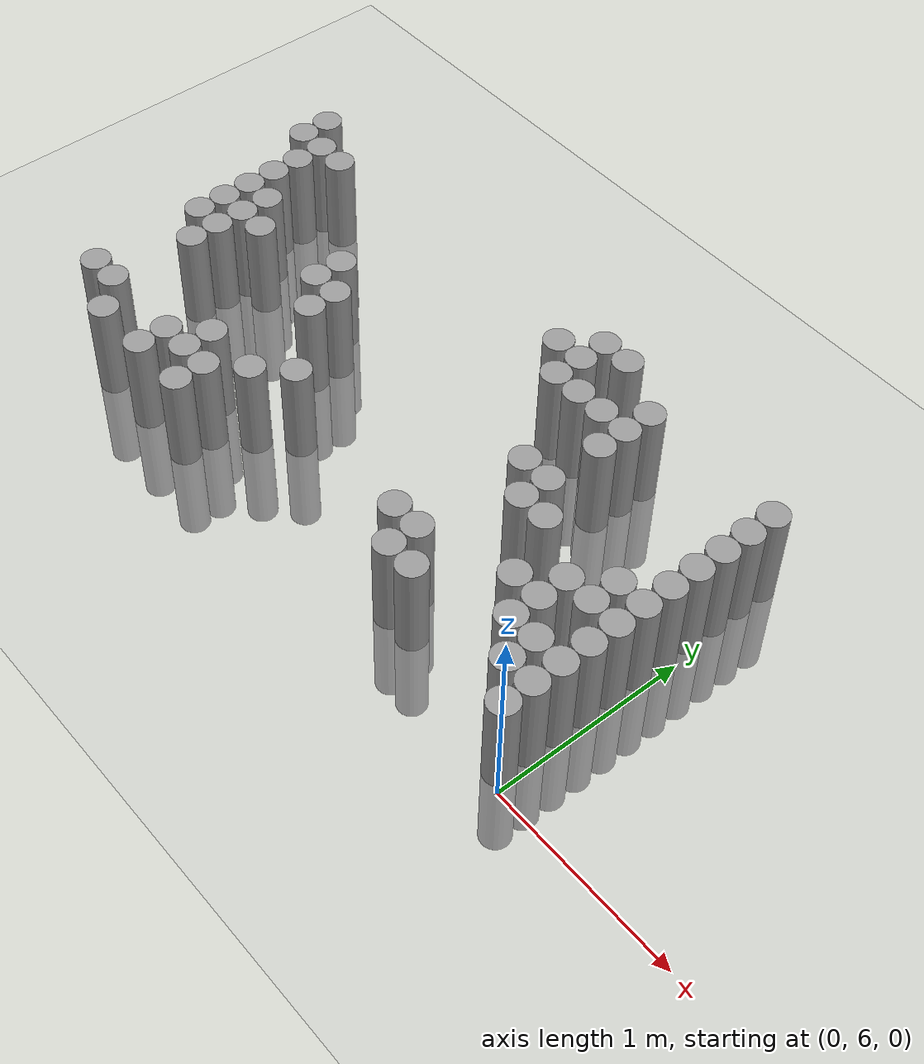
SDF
<sdf version="1.6">
 <world name="default">
  <model name="ground_plane">
   <static>1</static>
   <link name="link">
    <collision name="collision">
     <geometry><plane><normal>0 0 1</normal><size>100 100</size></plane></geometry>
     <surface><friction><ode><mu>100</mu><mu2>50</mu2></ode></friction></surface>
    </collision>
    <visual name="visual">
     <cast_shadows>0</cast_shadows>
     <geometry><plane><normal>0 0 1</normal><size>100 100</size></plane></geometry>
     <material>
      <script><uri>file://media/materials/scripts/gazebo.material</uri><name>Gazebo/Grey</name></script>
     </material>
    </visual>
   </link>
  </model>
  <model name="unit_cylinder_176">
   <pose>-3.375000 7.575000 0.000000 0.000000 0.000000 0.000000</pose>
   <link name="link">
    <inertial>
     <mass>1</mass>
     <inertia><ixx>0.145833</ixx><ixy>0</ixy><ixz>0</ixz><iyy>0.145833</iyy><iyz>0</iyz><izz>0.125</izz></inertia>
    </inertial>
    <collision name="collision">
     <geometry><cylinder><radius>0.075000</radius><length>1</length></cylinder></geometry>
    </collision>
    <visual name="visual">
     <geometry><cylinder><radius>0.075000</radius><length>1</length></cylinder></geometry>
     <material>
      <script><name>Gazebo/Grey</name><uri>file://media/materials/scripts/gazebo.material</uri></script>
     </material>
    </visual>
   </link>
  </model>
  <model name="unit_cylinder_177">
   <pose>-3.375000 7.725000 0.000000 0.000000 0.000000 0.000000</pose>
   <link name="link">
    <inertial>
     <mass>1</mass>
     <inertia><ixx>0.145833</ixx><ixy>0</ixy><ixz>0</ixz><iyy>0.145833</iyy><iyz>0</iyz><izz>0.125</izz></inertia>
    </inertial>
    <collision name="collision">
     <geometry><cylinder><radius>0.075000</radius><length>1</length></cylinder></geometry>
    </collision>
    <visual name="visual">
     <geometry><cylinder><radius>0.075000</radius><length>1</length></cylinder></geometry>
     <material>
      <script><name>Gazebo/Grey</name><uri>file://media/materials/scripts/gazebo.material</uri></script>
     </material>
    </visual>
   </link>
  </model>
  <model name="unit_cylinder_182">
   <pose>-3.225000 6.225000 0.000000 0.000000 0.000000 0.000000</pose>
   <link name="link">
    <inertial>
     <mass>1</mass>
     <inertia><ixx>0.145833</ixx><ixy>0</ixy><ixz>0</ixz><iyy>0.145833</iyy><iyz>0</iyz><izz>0.125</izz></inertia>
    </inertial>
    <collision name="collision">
     <geometry><cylinder><radius>0.075000</radius><length>1</length></cylinder></geometry>
    </collision>
    <visual name="visual">
     <geometry><cylinder><radius>0.075000</radius><length>1</length></cylinder></geometry>
     <material>
      <script><name>Gazebo/Grey</name><uri>file://media/materials/scripts/gazebo.material</uri></script>
     </material>
    </visual>
   </link>
  </model>
  <model name="unit_cylinder_183">
   <pose>-3.225000 6.825000 0.000000 0.000000 0.000000 0.000000</pose>
   <link name="link">
    <inertial>
     <mass>1</mass>
     <inertia><ixx>0.145833</ixx><ixy>0</ixy><ixz>0</ixz><iyy>0.145833</iyy><iyz>0</iyz><izz>0.125</izz></inertia>
    </inertial>
    <collision name="collision">
     <geometry><cylinder><radius>0.075000</radius><length>1</length></cylinder></geometry>
    </collision>
    <visual name="visual">
     <geometry><cylinder><radius>0.075000</radius><length>1</length></cylinder></geometry>
     <material>
      <script><name>Gazebo/Grey</name><uri>file://media/materials/scripts/gazebo.material</uri></script>
     </material>
    </visual>
   </link>
  </model>
  <model name="unit_cylinder_184">
   <pose>-3.225000 6.975000 0.000000 0.000000 0.000000 0.000000</pose>
   <link name="link">
    <inertial>
     <mass>1</mass>
     <inertia><ixx>0.145833</ixx><ixy>0</ixy><ixz>0</ixz><iyy>0.145833</iyy><iyz>0</iyz><izz>0.125</izz></inertia>
    </inertial>
    <collision name="collision">
     <geometry><cylinder><radius>0.075000</radius><length>1</length></cylinder></geometry>
    </collision>
    <visual name="visual">
     <geometry><cylinder><radius>0.075000</radius><length>1</length></cylinder></geometry>
     <material>
      <script><name>Gazebo/Grey</name><uri>file://media/materials/scripts/gazebo.material</uri></script>
     </material>
    </visual>
   </link>
  </model>
  <model name="unit_cylinder_185">
   <pose>-3.225000 7.125000 0.000000 0.000000 0.000000 0.000000</pose>
   <link name="link">
    <inertial>
     <mass>1</mass>
     <inertia><ixx>0.145833</ixx><ixy>0</ixy><ixz>0</ixz><iyy>0.145833</iyy><iyz>0</iyz><izz>0.125</izz></inertia>
    </inertial>
    <collision name="collision">
     <geometry><cylinder><radius>0.075000</radius><length>1</length></cylinder></geometry>
    </collision>
    <visual name="visual">
     <geometry><cylinder><radius>0.075000</radius><length>1</length></cylinder></geometry>
     <material>
      <script><name>Gazebo/Grey</name><uri>file://media/materials/scripts/gazebo.material</uri></script>
     </material>
    </visual>
   </link>
  </model>
  <model name="unit_cylinder_186">
   <pose>-3.225000 7.275000 0.000000 0.000000 0.000000 0.000000</pose>
   <link name="link">
    <inertial>
     <mass>1</mass>
     <inertia><ixx>0.145833</ixx><ixy>0</ixy><ixz>0</ixz><iyy>0.145833</iyy><iyz>0</iyz><izz>0.125</izz></inertia>
    </inertial>
    <collision name="collision">
     <geometry><cylinder><radius>0.075000</radius><length>1</length></cylinder></geometry>
    </collision>
    <visual name="visual">
     <geometry><cylinder><radius>0.075000</radius><length>1</length></cylinder></geometry>
     <material>
      <script><name>Gazebo/Grey</name><uri>file://media/materials/scripts/gazebo.material</uri></script>
     </material>
    </visual>
   </link>
  </model>
  <model name="unit_cylinder_187">
   <pose>-3.225000 7.425000 0.000000 0.000000 0.000000 0.000000</pose>
   <link name="link">
    <inertial>
     <mass>1</mass>
     <inertia><ixx>0.145833</ixx><ixy>0</ixy><ixz>0</ixz><iyy>0.145833</iyy><iyz>0</iyz><izz>0.125</izz></inertia>
    </inertial>
    <collision name="collision">
     <geometry><cylinder><radius>0.075000</radius><length>1</length></cylinder></geometry>
    </collision>
    <visual name="visual">
     <geometry><cylinder><radius>0.075000</radius><length>1</length></cylinder></geometry>
     <material>
      <script><name>Gazebo/Grey</name><uri>file://media/materials/scripts/gazebo.material</uri></script>
     </material>
    </visual>
   </link>
  </model>
  <model name="unit_cylinder_188">
   <pose>-3.225000 7.575000 0.000000 0.000000 0.000000 0.000000</pose>
   <link name="link">
    <inertial>
     <mass>1</mass>
     <inertia><ixx>0.145833</ixx><ixy>0</ixy><ixz>0</ixz><iyy>0.145833</iyy><iyz>0</iyz><izz>0.125</izz></inertia>
    </inertial>
    <collision name="collision">
     <geometry><cylinder><radius>0.075000</radius><length>1</length></cylinder></geometry>
    </collision>
    <visual name="visual">
     <geometry><cylinder><radius>0.075000</radius><length>1</length></cylinder></geometry>
     <material>
      <script><name>Gazebo/Grey</name><uri>file://media/materials/scripts/gazebo.material</uri></script>
     </material>
    </visual>
   </link>
  </model>
  <model name="unit_cylinder_191">
   <pose>-3.075000 6.225000 0.000000 0.000000 0.000000 0.000000</pose>
   <link name="link">
    <inertial>
     <mass>1</mass>
     <inertia><ixx>0.145833</ixx><ixy>0</ixy><ixz>0</ixz><iyy>0.145833</iyy><iyz>0</iyz><izz>0.125</izz></inertia>
    </inertial>
    <collision name="collision">
     <geometry><cylinder><radius>0.075000</radius><length>1</length></cylinder></geometry>
    </collision>
    <visual name="visual">
     <geometry><cylinder><radius>0.075000</radius><length>1</length></cylinder></geometry>
     <material>
      <script><name>Gazebo/Grey</name><uri>file://media/materials/scripts/gazebo.material</uri></script>
     </material>
    </visual>
   </link>
  </model>
  <model name="unit_cylinder_192">
   <pose>-3.075000 6.675000 0.000000 0.000000 0.000000 0.000000</pose>
   <link name="link">
    <inertial>
     <mass>1</mass>
     <inertia><ixx>0.145833</ixx><ixy>0</ixy><ixz>0</ixz><iyy>0.145833</iyy><iyz>0</iyz><izz>0.125</izz></inertia>
    </inertial>
    <collision name="collision">
     <geometry><cylinder><radius>0.075000</radius><length>1</length></cylinder></geometry>
    </collision>
    <visual name="visual">
     <geometry><cylinder><radius>0.075000</radius><length>1</length></cylinder></geometry>
     <material>
      <script><name>Gazebo/Grey</name><uri>file://media/materials/scripts/gazebo.material</uri></script>
     </material>
    </visual>
   </link>
  </model>
  <model name="unit_cylinder_193">
   <pose>-3.075000 6.825000 0.000000 0.000000 0.000000 0.000000</pose>
   <link name="link">
    <inertial>
     <mass>1</mass>
     <inertia><ixx>0.145833</ixx><ixy>0</ixy><ixz>0</ixz><iyy>0.145833</iyy><iyz>0</iyz><izz>0.125</izz></inertia>
    </inertial>
    <collision name="collision">
     <geometry><cylinder><radius>0.075000</radius><length>1</length></cylinder></geometry>
    </collision>
    <visual name="visual">
     <geometry><cylinder><radius>0.075000</radius><length>1</length></cylinder></geometry>
     <material>
      <script><name>Gazebo/Grey</name><uri>file://media/materials/scripts/gazebo.material</uri></script>
     </material>
    </visual>
   </link>
  </model>
  <model name="unit_cylinder_194">
   <pose>-3.075000 6.975000 0.000000 0.000000 0.000000 0.000000</pose>
   <link name="link">
    <inertial>
     <mass>1</mass>
     <inertia><ixx>0.145833</ixx><ixy>0</ixy><ixz>0</ixz><iyy>0.145833</iyy><iyz>0</iyz><izz>0.125</izz></inertia>
    </inertial>
    <collision name="collision">
     <geometry><cylinder><radius>0.075000</radius><length>1</length></cylinder></geometry>
    </collision>
    <visual name="visual">
     <geometry><cylinder><radius>0.075000</radius><length>1</length></cylinder></geometry>
     <material>
      <script><name>Gazebo/Grey</name><uri>file://media/materials/scripts/gazebo.material</uri></script>
     </material>
    </visual>
   </link>
  </model>
  <model name="unit_cylinder_195">
   <pose>-3.075000 7.125000 0.000000 0.000000 0.000000 0.000000</pose>
   <link name="link">
    <inertial>
     <mass>1</mass>
     <inertia><ixx>0.145833</ixx><ixy>0</ixy><ixz>0</ixz><iyy>0.145833</iyy><iyz>0</iyz><izz>0.125</izz></inertia>
    </inertial>
    <collision name="collision">
     <geometry><cylinder><radius>0.075000</radius><length>1</length></cylinder></geometry>
    </collision>
    <visual name="visual">
     <geometry><cylinder><radius>0.075000</radius><length>1</length></cylinder></geometry>
     <material>
      <script><name>Gazebo/Grey</name><uri>file://media/materials/scripts/gazebo.material</uri></script>
     </material>
    </visual>
   </link>
  </model>
  <model name="unit_cylinder_196">
   <pose>-3.075000 7.575000 0.000000 0.000000 0.000000 0.000000</pose>
   <link name="link">
    <inertial>
     <mass>1</mass>
     <inertia><ixx>0.145833</ixx><ixy>0</ixy><ixz>0</ixz><iyy>0.145833</iyy><iyz>0</iyz><izz>0.125</izz></inertia>
    </inertial>
    <collision name="collision">
     <geometry><cylinder><radius>0.075000</radius><length>1</length></cylinder></geometry>
    </collision>
    <visual name="visual">
     <geometry><cylinder><radius>0.075000</radius><length>1</length></cylinder></geometry>
     <material>
      <script><name>Gazebo/Grey</name><uri>file://media/materials/scripts/gazebo.material</uri></script>
     </material>
    </visual>
   </link>
  </model>
  <model name="unit_cylinder_197">
   <pose>-2.925000 6.075000 0.000000 0.000000 0.000000 0.000000</pose>
   <link name="link">
    <inertial>
     <mass>1</mass>
     <inertia><ixx>0.145833</ixx><ixy>0</ixy><ixz>0</ixz><iyy>0.145833</iyy><iyz>0</iyz><izz>0.125</izz></inertia>
    </inertial>
    <collision name="collision">
     <geometry><cylinder><radius>0.075000</radius><length>1</length></cylinder></geometry>
    </collision>
    <visual name="visual">
     <geometry><cylinder><radius>0.075000</radius><length>1</length></cylinder></geometry>
     <material>
      <script><name>Gazebo/Grey</name><uri>file://media/materials/scripts/gazebo.material</uri></script>
     </material>
    </visual>
   </link>
  </model>
  <model name="unit_cylinder_198">
   <pose>-2.925000 6.975000 0.000000 0.000000 0.000000 0.000000</pose>
   <link name="link">
    <inertial>
     <mass>1</mass>
     <inertia><ixx>0.145833</ixx><ixy>0</ixy><ixz>0</ixz><iyy>0.145833</iyy><iyz>0</iyz><izz>0.125</izz></inertia>
    </inertial>
    <collision name="collision">
     <geometry><cylinder><radius>0.075000</radius><length>1</length></cylinder></geometry>
    </collision>
    <visual name="visual">
     <geometry><cylinder><radius>0.075000</radius><length>1</length></cylinder></geometry>
     <material>
      <script><name>Gazebo/Grey</name><uri>file://media/materials/scripts/gazebo.material</uri></script>
     </material>
    </visual>
   </link>
  </model>
  <model name="unit_cylinder_200">
   <pose>-2.625000 6.075000 0.000000 0.000000 0.000000 0.000000</pose>
   <link name="link">
    <inertial>
     <mass>1</mass>
     <inertia><ixx>0.145833</ixx><ixy>0</ixy><ixz>0</ixz><iyy>0.145833</iyy><iyz>0</iyz><izz>0.125</izz></inertia>
    </inertial>
    <collision name="collision">
     <geometry><cylinder><radius>0.075000</radius><length>1</length></cylinder></geometry>
    </collision>
    <visual name="visual">
     <geometry><cylinder><radius>0.075000</radius><length>1</length></cylinder></geometry>
     <material>
      <script><name>Gazebo/Grey</name><uri>file://media/materials/scripts/gazebo.material</uri></script>
     </material>
    </visual>
   </link>
  </model>
  <model name="unit_cylinder_201">
   <pose>-2.625000 6.225000 0.000000 0.000000 0.000000 0.000000</pose>
   <link name="link">
    <inertial>
     <mass>1</mass>
     <inertia><ixx>0.145833</ixx><ixy>0</ixy><ixz>0</ixz><iyy>0.145833</iyy><iyz>0</iyz><izz>0.125</izz></inertia>
    </inertial>
    <collision name="collision">
     <geometry><cylinder><radius>0.075000</radius><length>1</length></cylinder></geometry>
    </collision>
    <visual name="visual">
     <geometry><cylinder><radius>0.075000</radius><length>1</length></cylinder></geometry>
     <material>
      <script><name>Gazebo/Grey</name><uri>file://media/materials/scripts/gazebo.material</uri></script>
     </material>
    </visual>
   </link>
  </model>
  <model name="unit_cylinder_203">
   <pose>-2.475000 6.225000 0.000000 0.000000 0.000000 0.000000</pose>
   <link name="link">
    <inertial>
     <mass>1</mass>
     <inertia><ixx>0.145833</ixx><ixy>0</ixy><ixz>0</ixz><iyy>0.145833</iyy><iyz>0</iyz><izz>0.125</izz></inertia>
    </inertial>
    <collision name="collision">
     <geometry><cylinder><radius>0.075000</radius><length>1</length></cylinder></geometry>
    </collision>
    <visual name="visual">
     <geometry><cylinder><radius>0.075000</radius><length>1</length></cylinder></geometry>
     <material>
      <script><name>Gazebo/Grey</name><uri>file://media/materials/scripts/gazebo.material</uri></script>
     </material>
    </visual>
   </link>
  </model>
  <model name="unit_cylinder_204">
   <pose>-2.475000 6.375000 0.000000 0.000000 0.000000 0.000000</pose>
   <link name="link">
    <inertial>
     <mass>1</mass>
     <inertia><ixx>0.145833</ixx><ixy>0</ixy><ixz>0</ixz><iyy>0.145833</iyy><iyz>0</iyz><izz>0.125</izz></inertia>
    </inertial>
    <collision name="collision">
     <geometry><cylinder><radius>0.075000</radius><length>1</length></cylinder></geometry>
    </collision>
    <visual name="visual">
     <geometry><cylinder><radius>0.075000</radius><length>1</length></cylinder></geometry>
     <material>
      <script><name>Gazebo/Grey</name><uri>file://media/materials/scripts/gazebo.material</uri></script>
     </material>
    </visual>
   </link>
  </model>
  <model name="unit_cylinder_205">
   <pose>-2.475000 6.975000 0.000000 0.000000 0.000000 0.000000</pose>
   <link name="link">
    <inertial>
     <mass>1</mass>
     <inertia><ixx>0.145833</ixx><ixy>0</ixy><ixz>0</ixz><iyy>0.145833</iyy><iyz>0</iyz><izz>0.125</izz></inertia>
    </inertial>
    <collision name="collision">
     <geometry><cylinder><radius>0.075000</radius><length>1</length></cylinder></geometry>
    </collision>
    <visual name="visual">
     <geometry><cylinder><radius>0.075000</radius><length>1</length></cylinder></geometry>
     <material>
      <script><name>Gazebo/Grey</name><uri>file://media/materials/scripts/gazebo.material</uri></script>
     </material>
    </visual>
   </link>
  </model>
  <model name="unit_cylinder_206">
   <pose>-2.475000 7.125000 0.000000 0.000000 0.000000 0.000000</pose>
   <link name="link">
    <inertial>
     <mass>1</mass>
     <inertia><ixx>0.145833</ixx><ixy>0</ixy><ixz>0</ixz><iyy>0.145833</iyy><iyz>0</iyz><izz>0.125</izz></inertia>
    </inertial>
    <collision name="collision">
     <geometry><cylinder><radius>0.075000</radius><length>1</length></cylinder></geometry>
    </collision>
    <visual name="visual">
     <geometry><cylinder><radius>0.075000</radius><length>1</length></cylinder></geometry>
     <material>
      <script><name>Gazebo/Grey</name><uri>file://media/materials/scripts/gazebo.material</uri></script>
     </material>
    </visual>
   </link>
  </model>
  <model name="unit_cylinder_212">
   <pose>-2.325000 6.075000 0.000000 0.000000 0.000000 0.000000</pose>
   <link name="link">
    <inertial>
     <mass>1</mass>
     <inertia><ixx>0.145833</ixx><ixy>0</ixy><ixz>0</ixz><iyy>0.145833</iyy><iyz>0</iyz><izz>0.125</izz></inertia>
    </inertial>
    <collision name="collision">
     <geometry><cylinder><radius>0.075000</radius><length>1</length></cylinder></geometry>
    </collision>
    <visual name="visual">
     <geometry><cylinder><radius>0.075000</radius><length>1</length></cylinder></geometry>
     <material>
      <script><name>Gazebo/Grey</name><uri>file://media/materials/scripts/gazebo.material</uri></script>
     </material>
    </visual>
   </link>
  </model>
  <model name="unit_cylinder_213">
   <pose>-2.325000 6.225000 0.000000 0.000000 0.000000 0.000000</pose>
   <link name="link">
    <inertial>
     <mass>1</mass>
     <inertia><ixx>0.145833</ixx><ixy>0</ixy><ixz>0</ixz><iyy>0.145833</iyy><iyz>0</iyz><izz>0.125</izz></inertia>
    </inertial>
    <collision name="collision">
     <geometry><cylinder><radius>0.075000</radius><length>1</length></cylinder></geometry>
    </collision>
    <visual name="visual">
     <geometry><cylinder><radius>0.075000</radius><length>1</length></cylinder></geometry>
     <material>
      <script><name>Gazebo/Grey</name><uri>file://media/materials/scripts/gazebo.material</uri></script>
     </material>
    </visual>
   </link>
  </model>
  <model name="unit_cylinder_214">
   <pose>-2.325000 6.825000 0.000000 0.000000 0.000000 0.000000</pose>
   <link name="link">
    <inertial>
     <mass>1</mass>
     <inertia><ixx>0.145833</ixx><ixy>0</ixy><ixz>0</ixz><iyy>0.145833</iyy><iyz>0</iyz><izz>0.125</izz></inertia>
    </inertial>
    <collision name="collision">
     <geometry><cylinder><radius>0.075000</radius><length>1</length></cylinder></geometry>
    </collision>
    <visual name="visual">
     <geometry><cylinder><radius>0.075000</radius><length>1</length></cylinder></geometry>
     <material>
      <script><name>Gazebo/Grey</name><uri>file://media/materials/scripts/gazebo.material</uri></script>
     </material>
    </visual>
   </link>
  </model>
  <model name="unit_cylinder_215">
   <pose>-2.325000 6.975000 0.000000 0.000000 0.000000 0.000000</pose>
   <link name="link">
    <inertial>
     <mass>1</mass>
     <inertia><ixx>0.145833</ixx><ixy>0</ixy><ixz>0</ixz><iyy>0.145833</iyy><iyz>0</iyz><izz>0.125</izz></inertia>
    </inertial>
    <collision name="collision">
     <geometry><cylinder><radius>0.075000</radius><length>1</length></cylinder></geometry>
    </collision>
    <visual name="visual">
     <geometry><cylinder><radius>0.075000</radius><length>1</length></cylinder></geometry>
     <material>
      <script><name>Gazebo/Grey</name><uri>file://media/materials/scripts/gazebo.material</uri></script>
     </material>
    </visual>
   </link>
  </model>
  <model name="unit_cylinder_219">
   <pose>-2.175000 6.375000 0.000000 0.000000 0.000000 0.000000</pose>
   <link name="link">
    <inertial>
     <mass>1</mass>
     <inertia><ixx>0.145833</ixx><ixy>0</ixy><ixz>0</ixz><iyy>0.145833</iyy><iyz>0</iyz><izz>0.125</izz></inertia>
    </inertial>
    <collision name="collision">
     <geometry><cylinder><radius>0.075000</radius><length>1</length></cylinder></geometry>
    </collision>
    <visual name="visual">
     <geometry><cylinder><radius>0.075000</radius><length>1</length></cylinder></geometry>
     <material>
      <script><name>Gazebo/Grey</name><uri>file://media/materials/scripts/gazebo.material</uri></script>
     </material>
    </visual>
   </link>
  </model>
  <model name="unit_cylinder_220">
   <pose>-2.025000 6.525000 0.000000 0.000000 0.000000 0.000000</pose>
   <link name="link">
    <inertial>
     <mass>1</mass>
     <inertia><ixx>0.145833</ixx><ixy>0</ixy><ixz>0</ixz><iyy>0.145833</iyy><iyz>0</iyz><izz>0.125</izz></inertia>
    </inertial>
    <collision name="collision">
     <geometry><cylinder><radius>0.075000</radius><length>1</length></cylinder></geometry>
    </collision>
    <visual name="visual">
     <geometry><cylinder><radius>0.075000</radius><length>1</length></cylinder></geometry>
     <material>
      <script><name>Gazebo/Grey</name><uri>file://media/materials/scripts/gazebo.material</uri></script>
     </material>
    </visual>
   </link>
  </model>
  <model name="unit_cylinder_231">
   <pose>-1.425000 7.575000 0.000000 0.000000 0.000000 0.000000</pose>
   <link name="link">
    <inertial>
     <mass>1</mass>
     <inertia><ixx>0.145833</ixx><ixy>0</ixy><ixz>0</ixz><iyy>0.145833</iyy><iyz>0</iyz><izz>0.125</izz></inertia>
    </inertial>
    <collision name="collision">
     <geometry><cylinder><radius>0.075000</radius><length>1</length></cylinder></geometry>
    </collision>
    <visual name="visual">
     <geometry><cylinder><radius>0.075000</radius><length>1</length></cylinder></geometry>
     <material>
      <script><name>Gazebo/Grey</name><uri>file://media/materials/scripts/gazebo.material</uri></script>
     </material>
    </visual>
   </link>
  </model>
  <model name="unit_cylinder_235">
   <pose>-1.275000 7.425000 0.000000 0.000000 0.000000 0.000000</pose>
   <link name="link">
    <inertial>
     <mass>1</mass>
     <inertia><ixx>0.145833</ixx><ixy>0</ixy><ixz>0</ixz><iyy>0.145833</iyy><iyz>0</iyz><izz>0.125</izz></inertia>
    </inertial>
    <collision name="collision">
     <geometry><cylinder><radius>0.075000</radius><length>1</length></cylinder></geometry>
    </collision>
    <visual name="visual">
     <geometry><cylinder><radius>0.075000</radius><length>1</length></cylinder></geometry>
     <material>
      <script><name>Gazebo/Grey</name><uri>file://media/materials/scripts/gazebo.material</uri></script>
     </material>
    </visual>
   </link>
  </model>
  <model name="unit_cylinder_236">
   <pose>-1.275000 7.575000 0.000000 0.000000 0.000000 0.000000</pose>
   <link name="link">
    <inertial>
     <mass>1</mass>
     <inertia><ixx>0.145833</ixx><ixy>0</ixy><ixz>0</ixz><iyy>0.145833</iyy><iyz>0</iyz><izz>0.125</izz></inertia>
    </inertial>
    <collision name="collision">
     <geometry><cylinder><radius>0.075000</radius><length>1</length></cylinder></geometry>
    </collision>
    <visual name="visual">
     <geometry><cylinder><radius>0.075000</radius><length>1</length></cylinder></geometry>
     <material>
      <script><name>Gazebo/Grey</name><uri>file://media/materials/scripts/gazebo.material</uri></script>
     </material>
    </visual>
   </link>
  </model>
  <model name="unit_cylinder_237">
   <pose>-1.275000 7.725000 0.000000 0.000000 0.000000 0.000000</pose>
   <link name="link">
    <inertial>
     <mass>1</mass>
     <inertia><ixx>0.145833</ixx><ixy>0</ixy><ixz>0</ixz><iyy>0.145833</iyy><iyz>0</iyz><izz>0.125</izz></inertia>
    </inertial>
    <collision name="collision">
     <geometry><cylinder><radius>0.075000</radius><length>1</length></cylinder></geometry>
    </collision>
    <visual name="visual">
     <geometry><cylinder><radius>0.075000</radius><length>1</length></cylinder></geometry>
     <material>
      <script><name>Gazebo/Grey</name><uri>file://media/materials/scripts/gazebo.material</uri></script>
     </material>
    </visual>
   </link>
  </model>
  <model name="unit_cylinder_241">
   <pose>-1.125000 6.375000 0.000000 0.000000 0.000000 0.000000</pose>
   <link name="link">
    <inertial>
     <mass>1</mass>
     <inertia><ixx>0.145833</ixx><ixy>0</ixy><ixz>0</ixz><iyy>0.145833</iyy><iyz>0</iyz><izz>0.125</izz></inertia>
    </inertial>
    <collision name="collision">
     <geometry><cylinder><radius>0.075000</radius><length>1</length></cylinder></geometry>
    </collision>
    <visual name="visual">
     <geometry><cylinder><radius>0.075000</radius><length>1</length></cylinder></geometry>
     <material>
      <script><name>Gazebo/Grey</name><uri>file://media/materials/scripts/gazebo.material</uri></script>
     </material>
    </visual>
   </link>
  </model>
  <model name="unit_cylinder_242">
   <pose>-1.125000 7.425000 0.000000 0.000000 0.000000 0.000000</pose>
   <link name="link">
    <inertial>
     <mass>1</mass>
     <inertia><ixx>0.145833</ixx><ixy>0</ixy><ixz>0</ixz><iyy>0.145833</iyy><iyz>0</iyz><izz>0.125</izz></inertia>
    </inertial>
    <collision name="collision">
     <geometry><cylinder><radius>0.075000</radius><length>1</length></cylinder></geometry>
    </collision>
    <visual name="visual">
     <geometry><cylinder><radius>0.075000</radius><length>1</length></cylinder></geometry>
     <material>
      <script><name>Gazebo/Grey</name><uri>file://media/materials/scripts/gazebo.material</uri></script>
     </material>
    </visual>
   </link>
  </model>
  <model name="unit_cylinder_243">
   <pose>-1.125000 7.725000 0.000000 0.000000 0.000000 0.000000</pose>
   <link name="link">
    <inertial>
     <mass>1</mass>
     <inertia><ixx>0.145833</ixx><ixy>0</ixy><ixz>0</ixz><iyy>0.145833</iyy><iyz>0</iyz><izz>0.125</izz></inertia>
    </inertial>
    <collision name="collision">
     <geometry><cylinder><radius>0.075000</radius><length>1</length></cylinder></geometry>
    </collision>
    <visual name="visual">
     <geometry><cylinder><radius>0.075000</radius><length>1</length></cylinder></geometry>
     <material>
      <script><name>Gazebo/Grey</name><uri>file://media/materials/scripts/gazebo.material</uri></script>
     </material>
    </visual>
   </link>
  </model>
  <model name="unit_cylinder_249">
   <pose>-0.975000 6.225000 0.000000 0.000000 0.000000 0.000000</pose>
   <link name="link">
    <inertial>
     <mass>1</mass>
     <inertia><ixx>0.145833</ixx><ixy>0</ixy><ixz>0</ixz><iyy>0.145833</iyy><iyz>0</iyz><izz>0.125</izz></inertia>
    </inertial>
    <collision name="collision">
     <geometry><cylinder><radius>0.075000</radius><length>1</length></cylinder></geometry>
    </collision>
    <visual name="visual">
     <geometry><cylinder><radius>0.075000</radius><length>1</length></cylinder></geometry>
     <material>
      <script><name>Gazebo/Grey</name><uri>file://media/materials/scripts/gazebo.material</uri></script>
     </material>
    </visual>
   </link>
  </model>
  <model name="unit_cylinder_250">
   <pose>-0.975000 6.375000 0.000000 0.000000 0.000000 0.000000</pose>
   <link name="link">
    <inertial>
     <mass>1</mass>
     <inertia><ixx>0.145833</ixx><ixy>0</ixy><ixz>0</ixz><iyy>0.145833</iyy><iyz>0</iyz><izz>0.125</izz></inertia>
    </inertial>
    <collision name="collision">
     <geometry><cylinder><radius>0.075000</radius><length>1</length></cylinder></geometry>
    </collision>
    <visual name="visual">
     <geometry><cylinder><radius>0.075000</radius><length>1</length></cylinder></geometry>
     <material>
      <script><name>Gazebo/Grey</name><uri>file://media/materials/scripts/gazebo.material</uri></script>
     </material>
    </visual>
   </link>
  </model>
  <model name="unit_cylinder_251">
   <pose>-0.975000 6.975000 0.000000 0.000000 0.000000 0.000000</pose>
   <link name="link">
    <inertial>
     <mass>1</mass>
     <inertia><ixx>0.145833</ixx><ixy>0</ixy><ixz>0</ixz><iyy>0.145833</iyy><iyz>0</iyz><izz>0.125</izz></inertia>
    </inertial>
    <collision name="collision">
     <geometry><cylinder><radius>0.075000</radius><length>1</length></cylinder></geometry>
    </collision>
    <visual name="visual">
     <geometry><cylinder><radius>0.075000</radius><length>1</length></cylinder></geometry>
     <material>
      <script><name>Gazebo/Grey</name><uri>file://media/materials/scripts/gazebo.material</uri></script>
     </material>
    </visual>
   </link>
  </model>
  <model name="unit_cylinder_252">
   <pose>-0.975000 7.425000 0.000000 0.000000 0.000000 0.000000</pose>
   <link name="link">
    <inertial>
     <mass>1</mass>
     <inertia><ixx>0.145833</ixx><ixy>0</ixy><ixz>0</ixz><iyy>0.145833</iyy><iyz>0</iyz><izz>0.125</izz></inertia>
    </inertial>
    <collision name="collision">
     <geometry><cylinder><radius>0.075000</radius><length>1</length></cylinder></geometry>
    </collision>
    <visual name="visual">
     <geometry><cylinder><radius>0.075000</radius><length>1</length></cylinder></geometry>
     <material>
      <script><name>Gazebo/Grey</name><uri>file://media/materials/scripts/gazebo.material</uri></script>
     </material>
    </visual>
   </link>
  </model>
  <model name="unit_cylinder_256">
   <pose>-0.825000 6.225000 0.000000 0.000000 0.000000 0.000000</pose>
   <link name="link">
    <inertial>
     <mass>1</mass>
     <inertia><ixx>0.145833</ixx><ixy>0</ixy><ixz>0</ixz><iyy>0.145833</iyy><iyz>0</iyz><izz>0.125</izz></inertia>
    </inertial>
    <collision name="collision">
     <geometry><cylinder><radius>0.075000</radius><length>1</length></cylinder></geometry>
    </collision>
    <visual name="visual">
     <geometry><cylinder><radius>0.075000</radius><length>1</length></cylinder></geometry>
     <material>
      <script><name>Gazebo/Grey</name><uri>file://media/materials/scripts/gazebo.material</uri></script>
     </material>
    </visual>
   </link>
  </model>
  <model name="unit_cylinder_257">
   <pose>-0.825000 6.825000 0.000000 0.000000 0.000000 0.000000</pose>
   <link name="link">
    <inertial>
     <mass>1</mass>
     <inertia><ixx>0.145833</ixx><ixy>0</ixy><ixz>0</ixz><iyy>0.145833</iyy><iyz>0</iyz><izz>0.125</izz></inertia>
    </inertial>
    <collision name="collision">
     <geometry><cylinder><radius>0.075000</radius><length>1</length></cylinder></geometry>
    </collision>
    <visual name="visual">
     <geometry><cylinder><radius>0.075000</radius><length>1</length></cylinder></geometry>
     <material>
      <script><name>Gazebo/Grey</name><uri>file://media/materials/scripts/gazebo.material</uri></script>
     </material>
    </visual>
   </link>
  </model>
  <model name="unit_cylinder_258">
   <pose>-0.825000 6.975000 0.000000 0.000000 0.000000 0.000000</pose>
   <link name="link">
    <inertial>
     <mass>1</mass>
     <inertia><ixx>0.145833</ixx><ixy>0</ixy><ixz>0</ixz><iyy>0.145833</iyy><iyz>0</iyz><izz>0.125</izz></inertia>
    </inertial>
    <collision name="collision">
     <geometry><cylinder><radius>0.075000</radius><length>1</length></cylinder></geometry>
    </collision>
    <visual name="visual">
     <geometry><cylinder><radius>0.075000</radius><length>1</length></cylinder></geometry>
     <material>
      <script><name>Gazebo/Grey</name><uri>file://media/materials/scripts/gazebo.material</uri></script>
     </material>
    </visual>
   </link>
  </model>
  <model name="unit_cylinder_259">
   <pose>-0.825000 7.275000 0.000000 0.000000 0.000000 0.000000</pose>
   <link name="link">
    <inertial>
     <mass>1</mass>
     <inertia><ixx>0.145833</ixx><ixy>0</ixy><ixz>0</ixz><iyy>0.145833</iyy><iyz>0</iyz><izz>0.125</izz></inertia>
    </inertial>
    <collision name="collision">
     <geometry><cylinder><radius>0.075000</radius><length>1</length></cylinder></geometry>
    </collision>
    <visual name="visual">
     <geometry><cylinder><radius>0.075000</radius><length>1</length></cylinder></geometry>
     <material>
      <script><name>Gazebo/Grey</name><uri>file://media/materials/scripts/gazebo.material</uri></script>
     </material>
    </visual>
   </link>
  </model>
  <model name="unit_cylinder_260">
   <pose>-0.825000 7.425000 0.000000 0.000000 0.000000 0.000000</pose>
   <link name="link">
    <inertial>
     <mass>1</mass>
     <inertia><ixx>0.145833</ixx><ixy>0</ixy><ixz>0</ixz><iyy>0.145833</iyy><iyz>0</iyz><izz>0.125</izz></inertia>
    </inertial>
    <collision name="collision">
     <geometry><cylinder><radius>0.075000</radius><length>1</length></cylinder></geometry>
    </collision>
    <visual name="visual">
     <geometry><cylinder><radius>0.075000</radius><length>1</length></cylinder></geometry>
     <material>
      <script><name>Gazebo/Grey</name><uri>file://media/materials/scripts/gazebo.material</uri></script>
     </material>
    </visual>
   </link>
  </model>
  <model name="unit_cylinder_261">
   <pose>-0.825000 7.575000 0.000000 0.000000 0.000000 0.000000</pose>
   <link name="link">
    <inertial>
     <mass>1</mass>
     <inertia><ixx>0.145833</ixx><ixy>0</ixy><ixz>0</ixz><iyy>0.145833</iyy><iyz>0</iyz><izz>0.125</izz></inertia>
    </inertial>
    <collision name="collision">
     <geometry><cylinder><radius>0.075000</radius><length>1</length></cylinder></geometry>
    </collision>
    <visual name="visual">
     <geometry><cylinder><radius>0.075000</radius><length>1</length></cylinder></geometry>
     <material>
      <script><name>Gazebo/Grey</name><uri>file://media/materials/scripts/gazebo.material</uri></script>
     </material>
    </visual>
   </link>
  </model>
  <model name="unit_cylinder_267">
   <pose>-0.675000 6.825000 0.000000 0.000000 0.000000 0.000000</pose>
   <link name="link">
    <inertial>
     <mass>1</mass>
     <inertia><ixx>0.145833</ixx><ixy>0</ixy><ixz>0</ixz><iyy>0.145833</iyy><iyz>0</iyz><izz>0.125</izz></inertia>
    </inertial>
    <collision name="collision">
     <geometry><cylinder><radius>0.075000</radius><length>1</length></cylinder></geometry>
    </collision>
    <visual name="visual">
     <geometry><cylinder><radius>0.075000</radius><length>1</length></cylinder></geometry>
     <material>
      <script><name>Gazebo/Grey</name><uri>file://media/materials/scripts/gazebo.material</uri></script>
     </material>
    </visual>
   </link>
  </model>
  <model name="unit_cylinder_273">
   <pose>-0.525000 6.525000 0.000000 0.000000 0.000000 0.000000</pose>
   <link name="link">
    <inertial>
     <mass>1</mass>
     <inertia><ixx>0.145833</ixx><ixy>0</ixy><ixz>0</ixz><iyy>0.145833</iyy><iyz>0</iyz><izz>0.125</izz></inertia>
    </inertial>
    <collision name="collision">
     <geometry><cylinder><radius>0.075000</radius><length>1</length></cylinder></geometry>
    </collision>
    <visual name="visual">
     <geometry><cylinder><radius>0.075000</radius><length>1</length></cylinder></geometry>
     <material>
      <script><name>Gazebo/Grey</name><uri>file://media/materials/scripts/gazebo.material</uri></script>
     </material>
    </visual>
   </link>
  </model>
  <model name="unit_cylinder_278">
   <pose>-0.375000 6.375000 0.000000 0.000000 0.000000 0.000000</pose>
   <link name="link">
    <inertial>
     <mass>1</mass>
     <inertia><ixx>0.145833</ixx><ixy>0</ixy><ixz>0</ixz><iyy>0.145833</iyy><iyz>0</iyz><izz>0.125</izz></inertia>
    </inertial>
    <collision name="collision">
     <geometry><cylinder><radius>0.075000</radius><length>1</length></cylinder></geometry>
    </collision>
    <visual name="visual">
     <geometry><cylinder><radius>0.075000</radius><length>1</length></cylinder></geometry>
     <material>
      <script><name>Gazebo/Grey</name><uri>file://media/materials/scripts/gazebo.material</uri></script>
     </material>
    </visual>
   </link>
  </model>
  <model name="unit_cylinder_279">
   <pose>-0.375000 6.525000 0.000000 0.000000 0.000000 0.000000</pose>
   <link name="link">
    <inertial>
     <mass>1</mass>
     <inertia><ixx>0.145833</ixx><ixy>0</ixy><ixz>0</ixz><iyy>0.145833</iyy><iyz>0</iyz><izz>0.125</izz></inertia>
    </inertial>
    <collision name="collision">
     <geometry><cylinder><radius>0.075000</radius><length>1</length></cylinder></geometry>
    </collision>
    <visual name="visual">
     <geometry><cylinder><radius>0.075000</radius><length>1</length></cylinder></geometry>
     <material>
      <script><name>Gazebo/Grey</name><uri>file://media/materials/scripts/gazebo.material</uri></script>
     </material>
    </visual>
   </link>
  </model>
  <model name="unit_cylinder_280">
   <pose>-0.375000 6.675000 0.000000 0.000000 0.000000 0.000000</pose>
   <link name="link">
    <inertial>
     <mass>1</mass>
     <inertia><ixx>0.145833</ixx><ixy>0</ixy><ixz>0</ixz><iyy>0.145833</iyy><iyz>0</iyz><izz>0.125</izz></inertia>
    </inertial>
    <collision name="collision">
     <geometry><cylinder><radius>0.075000</radius><length>1</length></cylinder></geometry>
    </collision>
    <visual name="visual">
     <geometry><cylinder><radius>0.075000</radius><length>1</length></cylinder></geometry>
     <material>
      <script><name>Gazebo/Grey</name><uri>file://media/materials/scripts/gazebo.material</uri></script>
     </material>
    </visual>
   </link>
  </model>
  <model name="unit_cylinder_287">
   <pose>-0.225000 6.225000 0.000000 0.000000 0.000000 0.000000</pose>
   <link name="link">
    <inertial>
     <mass>1</mass>
     <inertia><ixx>0.145833</ixx><ixy>0</ixy><ixz>0</ixz><iyy>0.145833</iyy><iyz>0</iyz><izz>0.125</izz></inertia>
    </inertial>
    <collision name="collision">
     <geometry><cylinder><radius>0.075000</radius><length>1</length></cylinder></geometry>
    </collision>
    <visual name="visual">
     <geometry><cylinder><radius>0.075000</radius><length>1</length></cylinder></geometry>
     <material>
      <script><name>Gazebo/Grey</name><uri>file://media/materials/scripts/gazebo.material</uri></script>
     </material>
    </visual>
   </link>
  </model>
  <model name="unit_cylinder_288">
   <pose>-0.225000 6.375000 0.000000 0.000000 0.000000 0.000000</pose>
   <link name="link">
    <inertial>
     <mass>1</mass>
     <inertia><ixx>0.145833</ixx><ixy>0</ixy><ixz>0</ixz><iyy>0.145833</iyy><iyz>0</iyz><izz>0.125</izz></inertia>
    </inertial>
    <collision name="collision">
     <geometry><cylinder><radius>0.075000</radius><length>1</length></cylinder></geometry>
    </collision>
    <visual name="visual">
     <geometry><cylinder><radius>0.075000</radius><length>1</length></cylinder></geometry>
     <material>
      <script><name>Gazebo/Grey</name><uri>file://media/materials/scripts/gazebo.material</uri></script>
     </material>
    </visual>
   </link>
  </model>
  <model name="unit_cylinder_289">
   <pose>-0.225000 6.675000 0.000000 0.000000 0.000000 0.000000</pose>
   <link name="link">
    <inertial>
     <mass>1</mass>
     <inertia><ixx>0.145833</ixx><ixy>0</ixy><ixz>0</ixz><iyy>0.145833</iyy><iyz>0</iyz><izz>0.125</izz></inertia>
    </inertial>
    <collision name="collision">
     <geometry><cylinder><radius>0.075000</radius><length>1</length></cylinder></geometry>
    </collision>
    <visual name="visual">
     <geometry><cylinder><radius>0.075000</radius><length>1</length></cylinder></geometry>
     <material>
      <script><name>Gazebo/Grey</name><uri>file://media/materials/scripts/gazebo.material</uri></script>
     </material>
    </visual>
   </link>
  </model>
  <model name="unit_cylinder_290">
   <pose>-0.225000 6.825000 0.000000 0.000000 0.000000 0.000000</pose>
   <link name="link">
    <inertial>
     <mass>1</mass>
     <inertia><ixx>0.145833</ixx><ixy>0</ixy><ixz>0</ixz><iyy>0.145833</iyy><iyz>0</iyz><izz>0.125</izz></inertia>
    </inertial>
    <collision name="collision">
     <geometry><cylinder><radius>0.075000</radius><length>1</length></cylinder></geometry>
    </collision>
    <visual name="visual">
     <geometry><cylinder><radius>0.075000</radius><length>1</length></cylinder></geometry>
     <material>
      <script><name>Gazebo/Grey</name><uri>file://media/materials/scripts/gazebo.material</uri></script>
     </material>
    </visual>
   </link>
  </model>
  <model name="unit_cylinder_306">
   <pose>-0.075000 6.075000 0.000000 0.000000 0.000000 0.000000</pose>
   <link name="link">
    <inertial>
     <mass>1</mass>
     <inertia><ixx>0.145833</ixx><ixy>0</ixy><ixz>0</ixz><iyy>0.145833</iyy><iyz>0</iyz><izz>0.125</izz></inertia>
    </inertial>
    <collision name="collision">
     <geometry><cylinder><radius>0.075000</radius><length>1</length></cylinder></geometry>
    </collision>
    <visual name="visual">
     <geometry><cylinder><radius>0.075000</radius><length>1</length></cylinder></geometry>
     <material>
      <script><name>Gazebo/Grey</name><uri>file://media/materials/scripts/gazebo.material</uri></script>
     </material>
    </visual>
   </link>
  </model>
  <model name="unit_cylinder_307">
   <pose>-0.075000 6.225000 0.000000 0.000000 0.000000 0.000000</pose>
   <link name="link">
    <inertial>
     <mass>1</mass>
     <inertia><ixx>0.145833</ixx><ixy>0</ixy><ixz>0</ixz><iyy>0.145833</iyy><iyz>0</iyz><izz>0.125</izz></inertia>
    </inertial>
    <collision name="collision">
     <geometry><cylinder><radius>0.075000</radius><length>1</length></cylinder></geometry>
    </collision>
    <visual name="visual">
     <geometry><cylinder><radius>0.075000</radius><length>1</length></cylinder></geometry>
     <material>
      <script><name>Gazebo/Grey</name><uri>file://media/materials/scripts/gazebo.material</uri></script>
     </material>
    </visual>
   </link>
  </model>
  <model name="unit_cylinder_308">
   <pose>-0.075000 6.375000 0.000000 0.000000 0.000000 0.000000</pose>
   <link name="link">
    <inertial>
     <mass>1</mass>
     <inertia><ixx>0.145833</ixx><ixy>0</ixy><ixz>0</ixz><iyy>0.145833</iyy><iyz>0</iyz><izz>0.125</izz></inertia>
    </inertial>
    <collision name="collision">
     <geometry><cylinder><radius>0.075000</radius><length>1</length></cylinder></geometry>
    </collision>
    <visual name="visual">
     <geometry><cylinder><radius>0.075000</radius><length>1</length></cylinder></geometry>
     <material>
      <script><name>Gazebo/Grey</name><uri>file://media/materials/scripts/gazebo.material</uri></script>
     </material>
    </visual>
   </link>
  </model>
  <model name="unit_cylinder_309">
   <pose>-0.075000 6.525000 0.000000 0.000000 0.000000 0.000000</pose>
   <link name="link">
    <inertial>
     <mass>1</mass>
     <inertia><ixx>0.145833</ixx><ixy>0</ixy><ixz>0</ixz><iyy>0.145833</iyy><iyz>0</iyz><izz>0.125</izz></inertia>
    </inertial>
    <collision name="collision">
     <geometry><cylinder><radius>0.075000</radius><length>1</length></cylinder></geometry>
    </collision>
    <visual name="visual">
     <geometry><cylinder><radius>0.075000</radius><length>1</length></cylinder></geometry>
     <material>
      <script><name>Gazebo/Grey</name><uri>file://media/materials/scripts/gazebo.material</uri></script>
     </material>
    </visual>
   </link>
  </model>
  <model name="unit_cylinder_310">
   <pose>-0.075000 6.675000 0.000000 0.000000 0.000000 0.000000</pose>
   <link name="link">
    <inertial>
     <mass>1</mass>
     <inertia><ixx>0.145833</ixx><ixy>0</ixy><ixz>0</ixz><iyy>0.145833</iyy><iyz>0</iyz><izz>0.125</izz></inertia>
    </inertial>
    <collision name="collision">
     <geometry><cylinder><radius>0.075000</radius><length>1</length></cylinder></geometry>
    </collision>
    <visual name="visual">
     <geometry><cylinder><radius>0.075000</radius><length>1</length></cylinder></geometry>
     <material>
      <script><name>Gazebo/Grey</name><uri>file://media/materials/scripts/gazebo.material</uri></script>
     </material>
    </visual>
   </link>
  </model>
  <model name="unit_cylinder_311">
   <pose>-0.075000 6.825000 0.000000 0.000000 0.000000 0.000000</pose>
   <link name="link">
    <inertial>
     <mass>1</mass>
     <inertia><ixx>0.145833</ixx><ixy>0</ixy><ixz>0</ixz><iyy>0.145833</iyy><iyz>0</iyz><izz>0.125</izz></inertia>
    </inertial>
    <collision name="collision">
     <geometry><cylinder><radius>0.075000</radius><length>1</length></cylinder></geometry>
    </collision>
    <visual name="visual">
     <geometry><cylinder><radius>0.075000</radius><length>1</length></cylinder></geometry>
     <material>
      <script><name>Gazebo/Grey</name><uri>file://media/materials/scripts/gazebo.material</uri></script>
     </material>
    </visual>
   </link>
  </model>
  <model name="unit_cylinder_312">
   <pose>-0.075000 6.975000 0.000000 0.000000 0.000000 0.000000</pose>
   <link name="link">
    <inertial>
     <mass>1</mass>
     <inertia><ixx>0.145833</ixx><ixy>0</ixy><ixz>0</ixz><iyy>0.145833</iyy><iyz>0</iyz><izz>0.125</izz></inertia>
    </inertial>
    <collision name="collision">
     <geometry><cylinder><radius>0.075000</radius><length>1</length></cylinder></geometry>
    </collision>
    <visual name="visual">
     <geometry><cylinder><radius>0.075000</radius><length>1</length></cylinder></geometry>
     <material>
      <script><name>Gazebo/Grey</name><uri>file://media/materials/scripts/gazebo.material</uri></script>
     </material>
    </visual>
   </link>
  </model>
  <model name="unit_cylinder_313">
   <pose>-0.075000 7.125000 0.000000 0.000000 0.000000 0.000000</pose>
   <link name="link">
    <inertial>
     <mass>1</mass>
     <inertia><ixx>0.145833</ixx><ixy>0</ixy><ixz>0</ixz><iyy>0.145833</iyy><iyz>0</iyz><izz>0.125</izz></inertia>
    </inertial>
    <collision name="collision">
     <geometry><cylinder><radius>0.075000</radius><length>1</length></cylinder></geometry>
    </collision>
    <visual name="visual">
     <geometry><cylinder><radius>0.075000</radius><length>1</length></cylinder></geometry>
     <material>
      <script><name>Gazebo/Grey</name><uri>file://media/materials/scripts/gazebo.material</uri></script>
     </material>
    </visual>
   </link>
  </model>
  <model name="unit_cylinder_314">
   <pose>-0.075000 7.275000 0.000000 0.000000 0.000000 0.000000</pose>
   <link name="link">
    <inertial>
     <mass>1</mass>
     <inertia><ixx>0.145833</ixx><ixy>0</ixy><ixz>0</ixz><iyy>0.145833</iyy><iyz>0</iyz><izz>0.125</izz></inertia>
    </inertial>
    <collision name="collision">
     <geometry><cylinder><radius>0.075000</radius><length>1</length></cylinder></geometry>
    </collision>
    <visual name="visual">
     <geometry><cylinder><radius>0.075000</radius><length>1</length></cylinder></geometry>
     <material>
      <script><name>Gazebo/Grey</name><uri>file://media/materials/scripts/gazebo.material</uri></script>
     </material>
    </visual>
   </link>
  </model>
  <model name="unit_cylinder_315">
   <pose>-0.075000 7.425000 0.000000 0.000000 0.000000 0.000000</pose>
   <link name="link">
    <inertial>
     <mass>1</mass>
     <inertia><ixx>0.145833</ixx><ixy>0</ixy><ixz>0</ixz><iyy>0.145833</iyy><iyz>0</iyz><izz>0.125</izz></inertia>
    </inertial>
    <collision name="collision">
     <geometry><cylinder><radius>0.075000</radius><length>1</length></cylinder></geometry>
    </collision>
    <visual name="visual">
     <geometry><cylinder><radius>0.075000</radius><length>1</length></cylinder></geometry>
     <material>
      <script><name>Gazebo/Grey</name><uri>file://media/materials/scripts/gazebo.material</uri></script>
     </material>
    </visual>
   </link>
  </model>
  <model name="unit_cylinder_316">
   <pose>-0.075000 7.575000 0.000000 0.000000 0.000000 0.000000</pose>
   <link name="link">
    <inertial>
     <mass>1</mass>
     <inertia><ixx>0.145833</ixx><ixy>0</ixy><ixz>0</ixz><iyy>0.145833</iyy><iyz>0</iyz><izz>0.125</izz></inertia>
    </inertial>
    <collision name="collision">
     <geometry><cylinder><radius>0.075000</radius><length>1</length></cylinder></geometry>
    </collision>
    <visual name="visual">
     <geometry><cylinder><radius>0.075000</radius><length>1</length></cylinder></geometry>
     <material>
      <script><name>Gazebo/Grey</name><uri>file://media/materials/scripts/gazebo.material</uri></script>
     </material>
    </visual>
   </link>
  </model>
 </world>
</sdf>
